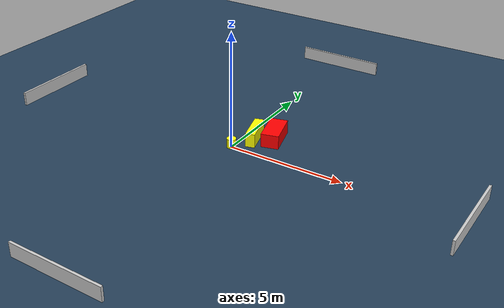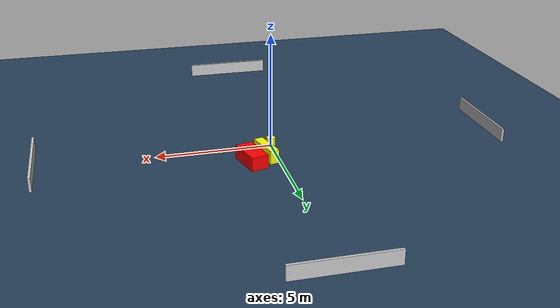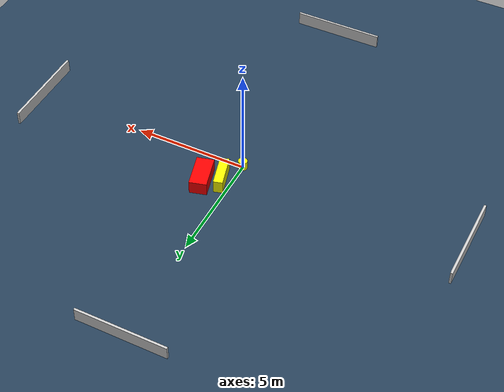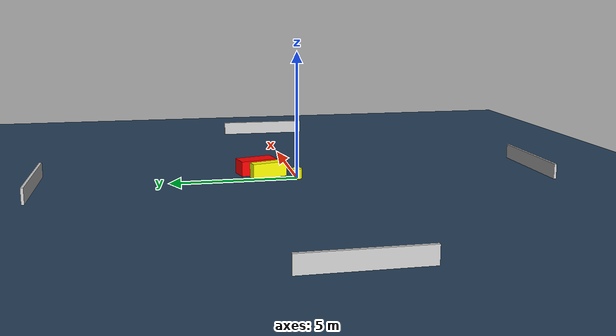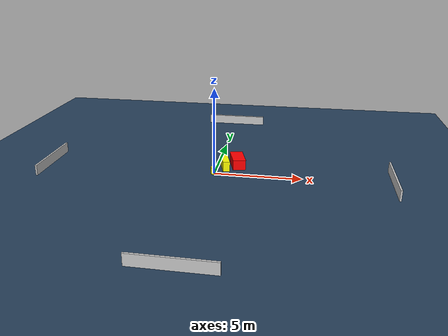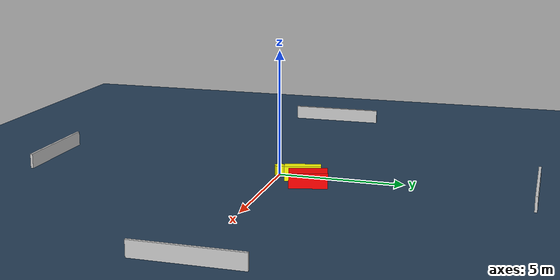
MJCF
<?xml version="1.0" ?>
<mujoco model="generated_environment">
  <option timestep="0.01" integrator="RK4" cone="elliptic"/>
  <default>
    <geom density="1"/>
  </default>
  <asset>
    <texture builtin="gradient" height="3072" name="skybox" rgb1="0.3 0.5 0.7" rgb2="0 0 0" type="skybox" width="512"/>
    <texture builtin="checker" height="300" name="groundplane" rgb1="0.2 0.3 0.4" rgb2="0.1 0.2 0.3" type="2d" width="300"/>
    <material name="groundplane" reflectance="0.2" texrepeat="5 5" texture="groundplane"/>
  </asset>
  <worldbody>
    <light dir="0 0 -1" directional="true" pos="0 0 1.5"/>
    <geom condim="3" friction="0.5 0.005 0.001" material="groundplane" name="floor" pos="0 0 0" size="0 0 0.05" type="plane"/>
    <body name="walls">
      <geom name="wall_1" condim="4" pos="-10.0 0.0 0.3" rgba="0.800000011920929 0.800000011920929 0.800000011920929 1.0" size="0.05 2.0 0.3" type="box"/>
      <geom name="wall_2" condim="4" pos="10.0 0.0 0.3" rgba="0.800000011920929 0.800000011920929 0.800000011920929 1.0" size="0.05 2.0 0.3" type="box"/>
      <geom name="wall_3" condim="4" pos="0.0 -10.0 0.3" rgba="0.800000011920929 0.800000011920929 0.800000011920929 1.0" size="2.0 0.05 0.3" type="box"/>
      <geom name="wall_4" condim="4" pos="0.0 10.0 0.3" rgba="0.800000011920929 0.800000011920929 0.800000011920929 1.0" size="2.0 0.05 0.3" type="box"/>
    </body>
    <body name="robot">
      <joint name="joint_x" type="slide" pos="0 0 0" axis="1 0 0"/>
      <joint name="joint_y" type="slide" pos="0 0 0" axis="0 1 0"/>
      <geom name="robot" type="cylinder" pos="0.0 0.0 0.2" size="0.2 0.2 0.0" mass="5.0" friction="1.0 0.005 0.0001" condim="4" rgba="1.0 1.0 0.0 1.0"/>
    </body>
    <body name="obstacle_1_movable">
      <geom name="obstacle_1_movable" condim="4" pos="0.457614752846944 1.0761418524979967 0.3" euler="0 0 195.64102099719554" friction="0.0 0.005 0.001" rgba="1.0 1.0 0.0 1.0" size="0.20134764839739616 0.7180682497569122 0.3" type="box" mass="0.1"/>
      <joint type="free"/>
    </body>
    <body name="obstacle_2_static">
      <geom name="obstacle_2_static" condim="4" pos="1.1693598776627294 1.4826908099013831 0.3" euler="0 0 195.080631635122" friction="0.0 0.005 0.001" rgba="1.0 0.0 0.0 1.0" size="0.378131744601621 0.7501369897244992 0.3" type="box"/>
    </body>
  </worldbody>
  <actuator>
    <motor name="actuator_x" joint="joint_x" gear="1" ctrlrange="-1 1"/>
    <motor name="actuator_y" joint="joint_y" gear="1" ctrlrange="-1 1"/>
  </actuator>
</mujoco>
